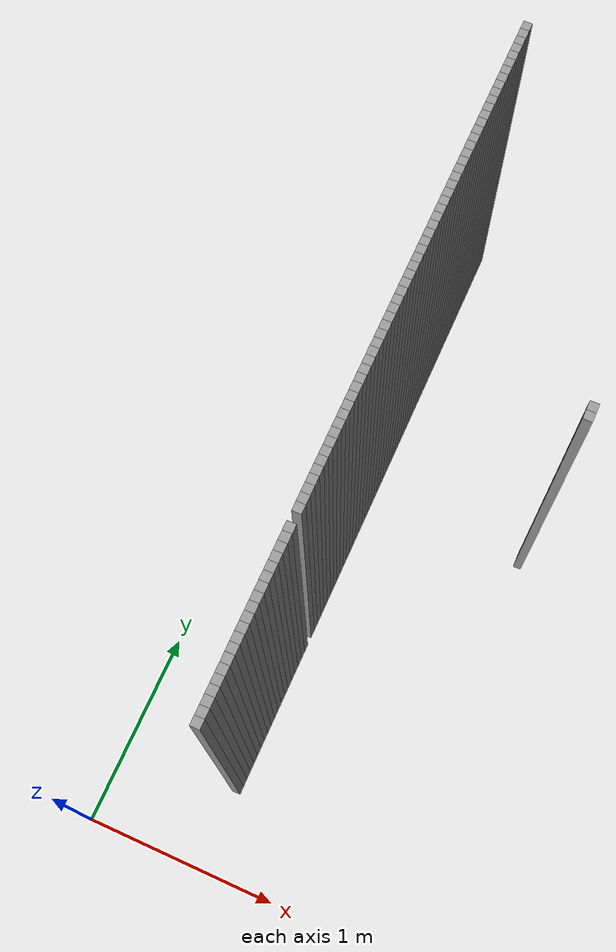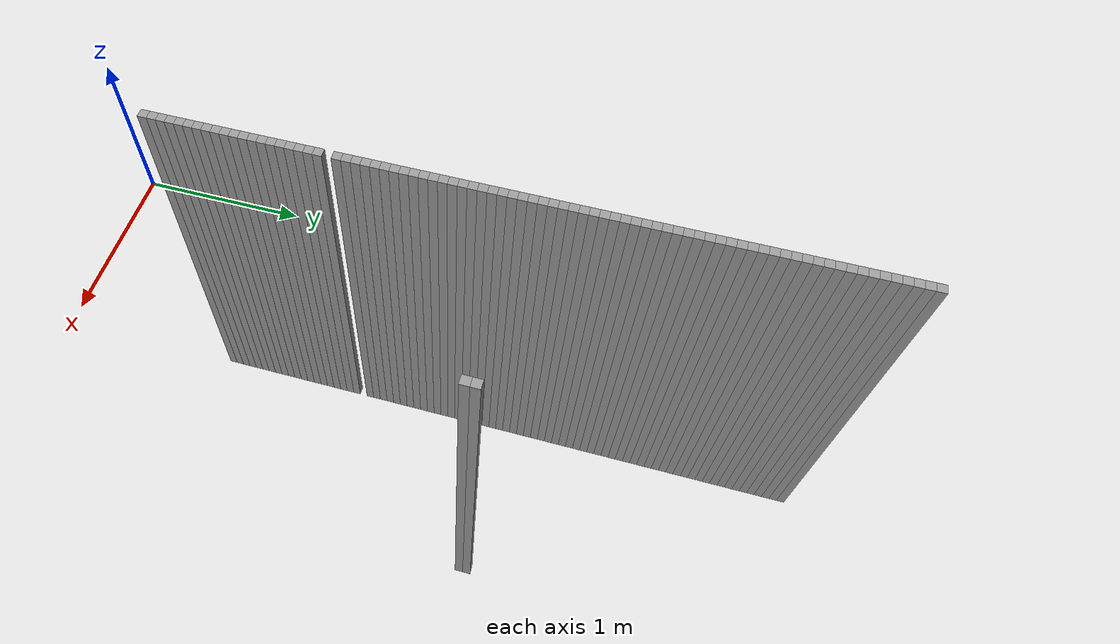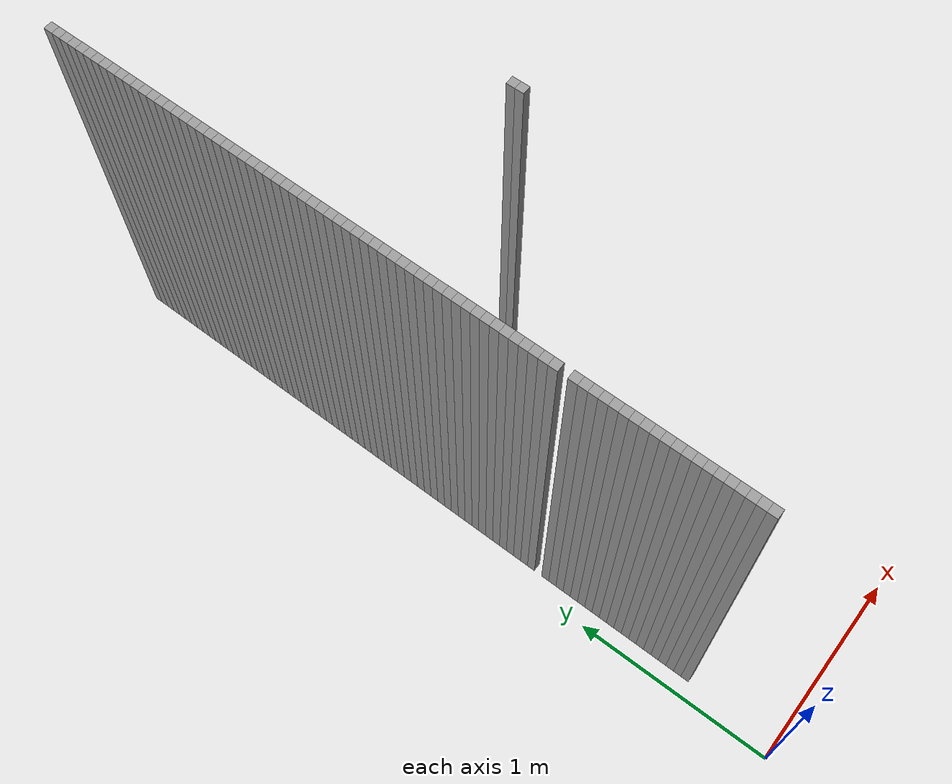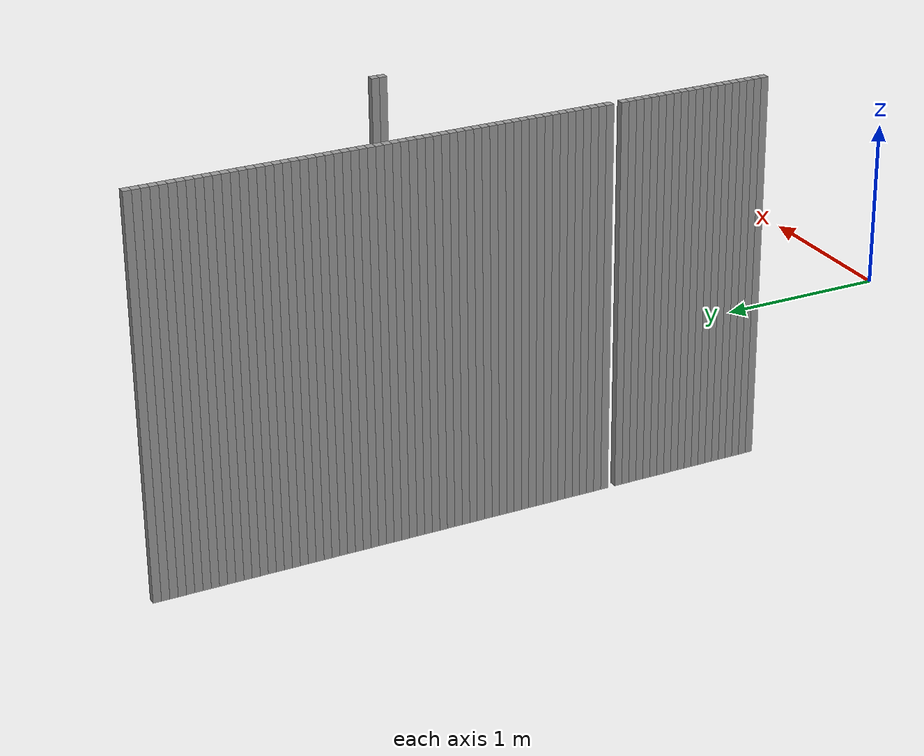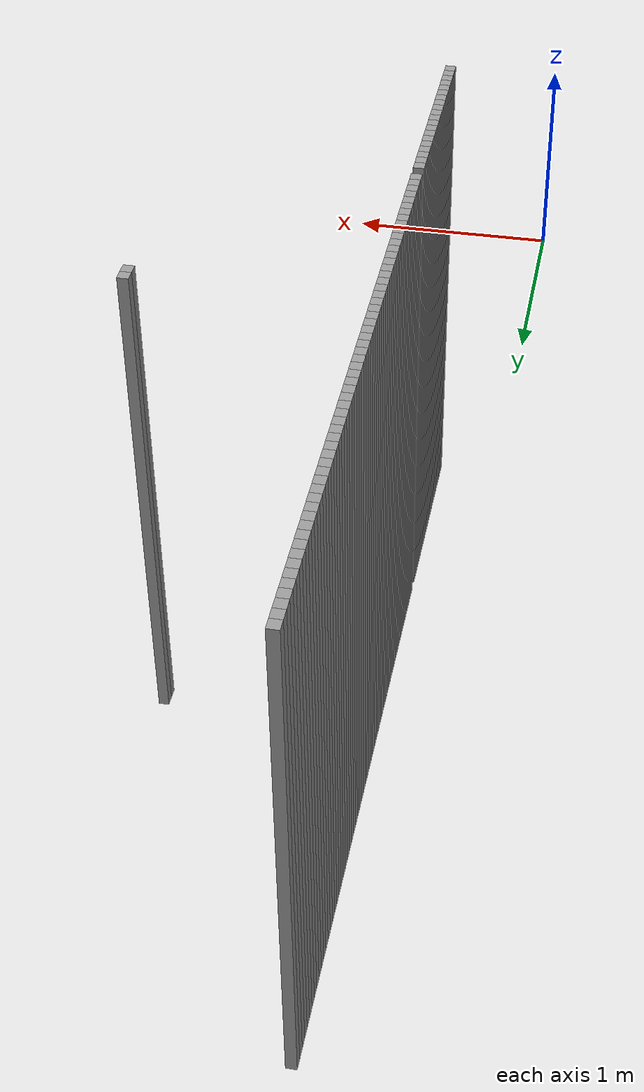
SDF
<sdf version="1.6">
 <model name="turtlebot3_rooms">
  <link name="Wall_1">
   <collision name="Wall_1_Collision"><geometry><box><size>0.05 0.05 2.5</size></box></geometry></collision>
   <visual name="Wall_1_Visual">
    <geometry><box><size>0.05 0.05 2.5</size></box></geometry>
    <material>
     <script><uri>file://media/materials/scripts/gazebo.material</uri><name>Gazebo/Grey</name></script>
     <ambient>1 1 1 1</ambient>
    </material>
   </visual>
   <pose>0.475 0.525 0 0 0 0</pose>
  </link>
  <link name="Wall_3">
   <collision name="Wall_3_Collision"><geometry><box><size>0.05 0.05 2.5</size></box></geometry></collision>
   <visual name="Wall_3_Visual">
    <geometry><box><size>0.05 0.05 2.5</size></box></geometry>
    <material>
     <script><uri>file://media/materials/scripts/gazebo.material</uri><name>Gazebo/Grey</name></script>
     <ambient>1 1 1 1</ambient>
    </material>
   </visual>
   <pose>0.475 0.575 0 0 0 0</pose>
  </link>
  <link name="Wall_5">
   <collision name="Wall_5_Collision"><geometry><box><size>0.05 0.05 2.5</size></box></geometry></collision>
   <visual name="Wall_5_Visual">
    <geometry><box><size>0.05 0.05 2.5</size></box></geometry>
    <material>
     <script><uri>file://media/materials/scripts/gazebo.material</uri><name>Gazebo/Grey</name></script>
     <ambient>1 1 1 1</ambient>
    </material>
   </visual>
   <pose>0.475 0.625 0 0 0 0</pose>
  </link>
  <link name="Wall_7">
   <collision name="Wall_7_Collision"><geometry><box><size>0.05 0.05 2.5</size></box></geometry></collision>
   <visual name="Wall_7_Visual">
    <geometry><box><size>0.05 0.05 2.5</size></box></geometry>
    <material>
     <script><uri>file://media/materials/scripts/gazebo.material</uri><name>Gazebo/Grey</name></script>
     <ambient>1 1 1 1</ambient>
    </material>
   </visual>
   <pose>0.475 0.675 0 0 0 0</pose>
  </link>
  <link name="Wall_9">
   <collision name="Wall_9_Collision"><geometry><box><size>0.05 0.05 2.5</size></box></geometry></collision>
   <visual name="Wall_9_Visual">
    <geometry><box><size>0.05 0.05 2.5</size></box></geometry>
    <material>
     <script><uri>file://media/materials/scripts/gazebo.material</uri><name>Gazebo/Grey</name></script>
     <ambient>1 1 1 1</ambient>
    </material>
   </visual>
   <pose>0.475 0.725 0 0 0 0</pose>
  </link>
  <link name="Wall_11">
   <collision name="Wall_11_Collision"><geometry><box><size>0.05 0.05 2.5</size></box></geometry></collision>
   <visual name="Wall_11_Visual">
    <geometry><box><size>0.05 0.05 2.5</size></box></geometry>
    <material>
     <script><uri>file://media/materials/scripts/gazebo.material</uri><name>Gazebo/Grey</name></script>
     <ambient>1 1 1 1</ambient>
    </material>
   </visual>
   <pose>0.475 0.775 0 0 0 0</pose>
  </link>
  <link name="Wall_13">
   <collision name="Wall_13_Collision"><geometry><box><size>0.05 0.05 2.5</size></box></geometry></collision>
   <visual name="Wall_13_Visual">
    <geometry><box><size>0.05 0.05 2.5</size></box></geometry>
    <material>
     <script><uri>file://media/materials/scripts/gazebo.material</uri><name>Gazebo/Grey</name></script>
     <ambient>1 1 1 1</ambient>
    </material>
   </visual>
   <pose>0.475 0.825 0 0 0 0</pose>
  </link>
  <link name="Wall_15">
   <collision name="Wall_15_Collision"><geometry><box><size>0.05 0.05 2.5</size></box></geometry></collision>
   <visual name="Wall_15_Visual">
    <geometry><box><size>0.05 0.05 2.5</size></box></geometry>
    <material>
     <script><uri>file://media/materials/scripts/gazebo.material</uri><name>Gazebo/Grey</name></script>
     <ambient>1 1 1 1</ambient>
    </material>
   </visual>
   <pose>0.475 0.875 0 0 0 0</pose>
  </link>
  <link name="Wall_17">
   <collision name="Wall_17_Collision"><geometry><box><size>0.05 0.05 2.5</size></box></geometry></collision>
   <visual name="Wall_17_Visual">
    <geometry><box><size>0.05 0.05 2.5</size></box></geometry>
    <material>
     <script><uri>file://media/materials/scripts/gazebo.material</uri><name>Gazebo/Grey</name></script>
     <ambient>1 1 1 1</ambient>
    </material>
   </visual>
   <pose>0.475 0.925 0 0 0 0</pose>
  </link>
  <link name="Wall_19">
   <collision name="Wall_19_Collision"><geometry><box><size>0.05 0.05 2.5</size></box></geometry></collision>
   <visual name="Wall_19_Visual">
    <geometry><box><size>0.05 0.05 2.5</size></box></geometry>
    <material>
     <script><uri>file://media/materials/scripts/gazebo.material</uri><name>Gazebo/Grey</name></script>
     <ambient>1 1 1 1</ambient>
    </material>
   </visual>
   <pose>0.475 0.975 0 0 0 0</pose>
  </link>
  <link name="Wall_21">
   <collision name="Wall_21_Collision"><geometry><box><size>0.05 0.05 2.5</size></box></geometry></collision>
   <visual name="Wall_21_Visual">
    <geometry><box><size>0.05 0.05 2.5</size></box></geometry>
    <material>
     <script><uri>file://media/materials/scripts/gazebo.material</uri><name>Gazebo/Grey</name></script>
     <ambient>1 1 1 1</ambient>
    </material>
   </visual>
   <pose>0.475 1.025 0 0 0 0</pose>
  </link>
  <link name="Wall_23">
   <collision name="Wall_23_Collision"><geometry><box><size>0.05 0.05 2.5</size></box></geometry></collision>
   <visual name="Wall_23_Visual">
    <geometry><box><size>0.05 0.05 2.5</size></box></geometry>
    <material>
     <script><uri>file://media/materials/scripts/gazebo.material</uri><name>Gazebo/Grey</name></script>
     <ambient>1 1 1 1</ambient>
    </material>
   </visual>
   <pose>0.475 1.075 0 0 0 0</pose>
  </link>
  <link name="Wall_25">
   <collision name="Wall_25_Collision"><geometry><box><size>0.05 0.05 2.5</size></box></geometry></collision>
   <visual name="Wall_25_Visual">
    <geometry><box><size>0.05 0.05 2.5</size></box></geometry>
    <material>
     <script><uri>file://media/materials/scripts/gazebo.material</uri><name>Gazebo/Grey</name></script>
     <ambient>1 1 1 1</ambient>
    </material>
   </visual>
   <pose>0.475 1.125 0 0 0 0</pose>
  </link>
  <link name="Wall_27">
   <collision name="Wall_27_Collision"><geometry><box><size>0.05 0.05 2.5</size></box></geometry></collision>
   <visual name="Wall_27_Visual">
    <geometry><box><size>0.05 0.05 2.5</size></box></geometry>
    <material>
     <script><uri>file://media/materials/scripts/gazebo.material</uri><name>Gazebo/Grey</name></script>
     <ambient>1 1 1 1</ambient>
    </material>
   </visual>
   <pose>0.475 1.175 0 0 0 0</pose>
  </link>
  <link name="Wall_29">
   <collision name="Wall_29_Collision"><geometry><box><size>0.05 0.05 2.5</size></box></geometry></collision>
   <visual name="Wall_29_Visual">
    <geometry><box><size>0.05 0.05 2.5</size></box></geometry>
    <material>
     <script><uri>file://media/materials/scripts/gazebo.material</uri><name>Gazebo/Grey</name></script>
     <ambient>1 1 1 1</ambient>
    </material>
   </visual>
   <pose>0.475 1.225 0 0 0 0</pose>
  </link>
  <link name="Wall_31">
   <collision name="Wall_31_Collision"><geometry><box><size>0.05 0.05 2.5</size></box></geometry></collision>
   <visual name="Wall_31_Visual">
    <geometry><box><size>0.05 0.05 2.5</size></box></geometry>
    <material>
     <script><uri>file://media/materials/scripts/gazebo.material</uri><name>Gazebo/Grey</name></script>
     <ambient>1 1 1 1</ambient>
    </material>
   </visual>
   <pose>0.475 1.275 0 0 0 0</pose>
  </link>
  <link name="Wall_33">
   <collision name="Wall_33_Collision"><geometry><box><size>0.05 0.05 2.5</size></box></geometry></collision>
   <visual name="Wall_33_Visual">
    <geometry><box><size>0.05 0.05 2.5</size></box></geometry>
    <material>
     <script><uri>file://media/materials/scripts/gazebo.material</uri><name>Gazebo/Grey</name></script>
     <ambient>1 1 1 1</ambient>
    </material>
   </visual>
   <pose>0.475 1.325 0 0 0 0</pose>
  </link>
  <link name="Wall_35">
   <collision name="Wall_35_Collision"><geometry><box><size>0.05 0.05 2.5</size></box></geometry></collision>
   <visual name="Wall_35_Visual">
    <geometry><box><size>0.05 0.05 2.5</size></box></geometry>
    <material>
     <script><uri>file://media/materials/scripts/gazebo.material</uri><name>Gazebo/Grey</name></script>
     <ambient>1 1 1 1</ambient>
    </material>
   </visual>
   <pose>0.475 1.375 0 0 0 0</pose>
  </link>
  <link name="Wall_37">
   <collision name="Wall_37_Collision"><geometry><box><size>0.05 0.05 2.5</size></box></geometry></collision>
   <visual name="Wall_37_Visual">
    <geometry><box><size>0.05 0.05 2.5</size></box></geometry>
    <material>
     <script><uri>file://media/materials/scripts/gazebo.material</uri><name>Gazebo/Grey</name></script>
     <ambient>1 1 1 1</ambient>
    </material>
   </visual>
   <pose>0.475 1.425 0 0 0 0</pose>
  </link>
  <link name="Wall_39">
   <collision name="Wall_39_Collision"><geometry><box><size>0.05 0.05 2.5</size></box></geometry></collision>
   <visual name="Wall_39_Visual">
    <geometry><box><size>0.05 0.05 2.5</size></box></geometry>
    <material>
     <script><uri>file://media/materials/scripts/gazebo.material</uri><name>Gazebo/Grey</name></script>
     <ambient>1 1 1 1</ambient>
    </material>
   </visual>
   <pose>0.475 1.475 0 0 0 0</pose>
  </link>
  <link name="Wall_43">
   <collision name="Wall_43_Collision"><geometry><box><size>0.05 0.05 2.5</size></box></geometry></collision>
   <visual name="Wall_43_Visual">
    <geometry><box><size>0.05 0.05 2.5</size></box></geometry>
    <material>
     <script><uri>file://media/materials/scripts/gazebo.material</uri><name>Gazebo/Grey</name></script>
     <ambient>1 1 1 1</ambient>
    </material>
   </visual>
   <pose>0.475 1.575 0 0 0 0</pose>
  </link>
  <link name="Wall_46">
   <collision name="Wall_46_Collision"><geometry><box><size>0.05 0.05 2.5</size></box></geometry></collision>
   <visual name="Wall_46_Visual">
    <geometry><box><size>0.05 0.05 2.5</size></box></geometry>
    <material>
     <script><uri>file://media/materials/scripts/gazebo.material</uri><name>Gazebo/Grey</name></script>
     <ambient>1 1 1 1</ambient>
    </material>
   </visual>
   <pose>0.475 1.625 0 0 0 0</pose>
  </link>
  <link name="Wall_49">
   <collision name="Wall_49_Collision"><geometry><box><size>0.05 0.05 2.5</size></box></geometry></collision>
   <visual name="Wall_49_Visual">
    <geometry><box><size>0.05 0.05 2.5</size></box></geometry>
    <material>
     <script><uri>file://media/materials/scripts/gazebo.material</uri><name>Gazebo/Grey</name></script>
     <ambient>1 1 1 1</ambient>
    </material>
   </visual>
   <pose>0.475 1.675 0 0 0 0</pose>
  </link>
  <link name="Wall_52">
   <collision name="Wall_52_Collision"><geometry><box><size>0.05 0.05 2.5</size></box></geometry></collision>
   <visual name="Wall_52_Visual">
    <geometry><box><size>0.05 0.05 2.5</size></box></geometry>
    <material>
     <script><uri>file://media/materials/scripts/gazebo.material</uri><name>Gazebo/Grey</name></script>
     <ambient>1 1 1 1</ambient>
    </material>
   </visual>
   <pose>0.475 1.725 0 0 0 0</pose>
  </link>
  <link name="Wall_55">
   <collision name="Wall_55_Collision"><geometry><box><size>0.05 0.05 2.5</size></box></geometry></collision>
   <visual name="Wall_55_Visual">
    <geometry><box><size>0.05 0.05 2.5</size></box></geometry>
    <material>
     <script><uri>file://media/materials/scripts/gazebo.material</uri><name>Gazebo/Grey</name></script>
     <ambient>1 1 1 1</ambient>
    </material>
   </visual>
   <pose>0.475 1.775 0 0 0 0</pose>
  </link>
  <link name="Wall_58">
   <collision name="Wall_58_Collision"><geometry><box><size>0.05 0.05 2.5</size></box></geometry></collision>
   <visual name="Wall_58_Visual">
    <geometry><box><size>0.05 0.05 2.5</size></box></geometry>
    <material>
     <script><uri>file://media/materials/scripts/gazebo.material</uri><name>Gazebo/Grey</name></script>
     <ambient>1 1 1 1</ambient>
    </material>
   </visual>
   <pose>0.475 1.825 0 0 0 0</pose>
  </link>
  <link name="Wall_61">
   <collision name="Wall_61_Collision"><geometry><box><size>0.05 0.05 2.5</size></box></geometry></collision>
   <visual name="Wall_61_Visual">
    <geometry><box><size>0.05 0.05 2.5</size></box></geometry>
    <material>
     <script><uri>file://media/materials/scripts/gazebo.material</uri><name>Gazebo/Grey</name></script>
     <ambient>1 1 1 1</ambient>
    </material>
   </visual>
   <pose>0.475 1.875 0 0 0 0</pose>
  </link>
  <link name="Wall_64">
   <collision name="Wall_64_Collision"><geometry><box><size>0.05 0.05 2.5</size></box></geometry></collision>
   <visual name="Wall_64_Visual">
    <geometry><box><size>0.05 0.05 2.5</size></box></geometry>
    <material>
     <script><uri>file://media/materials/scripts/gazebo.material</uri><name>Gazebo/Grey</name></script>
     <ambient>1 1 1 1</ambient>
    </material>
   </visual>
   <pose>0.475 1.925 0 0 0 0</pose>
  </link>
  <link name="Wall_67">
   <collision name="Wall_67_Collision"><geometry><box><size>0.05 0.05 2.5</size></box></geometry></collision>
   <visual name="Wall_67_Visual">
    <geometry><box><size>0.05 0.05 2.5</size></box></geometry>
    <material>
     <script><uri>file://media/materials/scripts/gazebo.material</uri><name>Gazebo/Grey</name></script>
     <ambient>1 1 1 1</ambient>
    </material>
   </visual>
   <pose>0.475 1.975 0 0 0 0</pose>
  </link>
  <link name="Wall_70">
   <collision name="Wall_70_Collision"><geometry><box><size>0.05 0.05 2.5</size></box></geometry></collision>
   <visual name="Wall_70_Visual">
    <geometry><box><size>0.05 0.05 2.5</size></box></geometry>
    <material>
     <script><uri>file://media/materials/scripts/gazebo.material</uri><name>Gazebo/Grey</name></script>
     <ambient>1 1 1 1</ambient>
    </material>
   </visual>
   <pose>0.475 2.025 0 0 0 0</pose>
  </link>
  <link name="Wall_73">
   <collision name="Wall_73_Collision"><geometry><box><size>0.05 0.05 2.5</size></box></geometry></collision>
   <visual name="Wall_73_Visual">
    <geometry><box><size>0.05 0.05 2.5</size></box></geometry>
    <material>
     <script><uri>file://media/materials/scripts/gazebo.material</uri><name>Gazebo/Grey</name></script>
     <ambient>1 1 1 1</ambient>
    </material>
   </visual>
   <pose>0.475 2.075 0 0 0 0</pose>
  </link>
  <link name="Wall_76">
   <collision name="Wall_76_Collision"><geometry><box><size>0.05 0.05 2.5</size></box></geometry></collision>
   <visual name="Wall_76_Visual">
    <geometry><box><size>0.05 0.05 2.5</size></box></geometry>
    <material>
     <script><uri>file://media/materials/scripts/gazebo.material</uri><name>Gazebo/Grey</name></script>
     <ambient>1 1 1 1</ambient>
    </material>
   </visual>
   <pose>0.475 2.125 0 0 0 0</pose>
  </link>
  <link name="Wall_79">
   <collision name="Wall_79_Collision"><geometry><box><size>0.05 0.05 2.5</size></box></geometry></collision>
   <visual name="Wall_79_Visual">
    <geometry><box><size>0.05 0.05 2.5</size></box></geometry>
    <material>
     <script><uri>file://media/materials/scripts/gazebo.material</uri><name>Gazebo/Grey</name></script>
     <ambient>1 1 1 1</ambient>
    </material>
   </visual>
   <pose>0.475 2.175 0 0 0 0</pose>
  </link>
  <link name="Wall_82">
   <collision name="Wall_82_Collision"><geometry><box><size>0.05 0.05 2.5</size></box></geometry></collision>
   <visual name="Wall_82_Visual">
    <geometry><box><size>0.05 0.05 2.5</size></box></geometry>
    <material>
     <script><uri>file://media/materials/scripts/gazebo.material</uri><name>Gazebo/Grey</name></script>
     <ambient>1 1 1 1</ambient>
    </material>
   </visual>
   <pose>0.475 2.225 0 0 0 0</pose>
  </link>
  <link name="Wall_85">
   <collision name="Wall_85_Collision"><geometry><box><size>0.05 0.05 2.5</size></box></geometry></collision>
   <visual name="Wall_85_Visual">
    <geometry><box><size>0.05 0.05 2.5</size></box></geometry>
    <material>
     <script><uri>file://media/materials/scripts/gazebo.material</uri><name>Gazebo/Grey</name></script>
     <ambient>1 1 1 1</ambient>
    </material>
   </visual>
   <pose>0.475 2.275 0 0 0 0</pose>
  </link>
  <link name="Wall_88">
   <collision name="Wall_88_Collision"><geometry><box><size>0.05 0.05 2.5</size></box></geometry></collision>
   <visual name="Wall_88_Visual">
    <geometry><box><size>0.05 0.05 2.5</size></box></geometry>
    <material>
     <script><uri>file://media/materials/scripts/gazebo.material</uri><name>Gazebo/Grey</name></script>
     <ambient>1 1 1 1</ambient>
    </material>
   </visual>
   <pose>0.475 2.325 0 0 0 0</pose>
  </link>
  <link name="Wall_91">
   <collision name="Wall_91_Collision"><geometry><box><size>0.05 0.05 2.5</size></box></geometry></collision>
   <visual name="Wall_91_Visual">
    <geometry><box><size>0.05 0.05 2.5</size></box></geometry>
    <material>
     <script><uri>file://media/materials/scripts/gazebo.material</uri><name>Gazebo/Grey</name></script>
     <ambient>1 1 1 1</ambient>
    </material>
   </visual>
   <pose>0.475 2.375 0 0 0 0</pose>
  </link>
  <link name="Wall_94">
   <collision name="Wall_94_Collision"><geometry><box><size>0.05 0.05 2.5</size></box></geometry></collision>
   <visual name="Wall_94_Visual">
    <geometry><box><size>0.05 0.05 2.5</size></box></geometry>
    <material>
     <script><uri>file://media/materials/scripts/gazebo.material</uri><name>Gazebo/Grey</name></script>
     <ambient>1 1 1 1</ambient>
    </material>
   </visual>
   <pose>0.475 2.425 0 0 0 0</pose>
  </link>
  <link name="Wall_97">
   <collision name="Wall_97_Collision"><geometry><box><size>0.05 0.05 2.5</size></box></geometry></collision>
   <visual name="Wall_97_Visual">
    <geometry><box><size>0.05 0.05 2.5</size></box></geometry>
    <material>
     <script><uri>file://media/materials/scripts/gazebo.material</uri><name>Gazebo/Grey</name></script>
     <ambient>1 1 1 1</ambient>
    </material>
   </visual>
   <pose>0.475 2.475 0 0 0 0</pose>
  </link>
  <link name="Wall_101">
   <collision name="Wall_101_Collision"><geometry><box><size>0.05 0.05 2.5</size></box></geometry></collision>
   <visual name="Wall_101_Visual">
    <geometry><box><size>0.05 0.05 2.5</size></box></geometry>
    <material>
     <script><uri>file://media/materials/scripts/gazebo.material</uri><name>Gazebo/Grey</name></script>
     <ambient>1 1 1 1</ambient>
    </material>
   </visual>
   <pose>0.475 2.525 0 0 0 0</pose>
  </link>
  <link name="Wall_102">
   <collision name="Wall_102_Collision"><geometry><box><size>0.05 0.05 2.5</size></box></geometry></collision>
   <visual name="Wall_102_Visual">
    <geometry><box><size>0.05 0.05 2.5</size></box></geometry>
    <material>
     <script><uri>file://media/materials/scripts/gazebo.material</uri><name>Gazebo/Grey</name></script>
     <ambient>1 1 1 1</ambient>
    </material>
   </visual>
   <pose>1.525 2.525 0 0 0 0</pose>
  </link>
  <link name="Wall_106">
   <collision name="Wall_106_Collision"><geometry><box><size>0.05 0.05 2.5</size></box></geometry></collision>
   <visual name="Wall_106_Visual">
    <geometry><box><size>0.05 0.05 2.5</size></box></geometry>
    <material>
     <script><uri>file://media/materials/scripts/gazebo.material</uri><name>Gazebo/Grey</name></script>
     <ambient>1 1 1 1</ambient>
    </material>
   </visual>
   <pose>0.475 2.575 0 0 0 0</pose>
  </link>
  <link name="Wall_107">
   <collision name="Wall_107_Collision"><geometry><box><size>0.05 0.05 2.5</size></box></geometry></collision>
   <visual name="Wall_107_Visual">
    <geometry><box><size>0.05 0.05 2.5</size></box></geometry>
    <material>
     <script><uri>file://media/materials/scripts/gazebo.material</uri><name>Gazebo/Grey</name></script>
     <ambient>1 1 1 1</ambient>
    </material>
   </visual>
   <pose>1.525 2.575 0 0 0 0</pose>
  </link>
  <link name="Wall_111">
   <collision name="Wall_111_Collision"><geometry><box><size>0.05 0.05 2.5</size></box></geometry></collision>
   <visual name="Wall_111_Visual">
    <geometry><box><size>0.05 0.05 2.5</size></box></geometry>
    <material>
     <script><uri>file://media/materials/scripts/gazebo.material</uri><name>Gazebo/Grey</name></script>
     <ambient>1 1 1 1</ambient>
    </material>
   </visual>
   <pose>0.475 2.625 0 0 0 0</pose>
  </link>
  <link name="Wall_116">
   <collision name="Wall_116_Collision"><geometry><box><size>0.05 0.05 2.5</size></box></geometry></collision>
   <visual name="Wall_116_Visual">
    <geometry><box><size>0.05 0.05 2.5</size></box></geometry>
    <material>
     <script><uri>file://media/materials/scripts/gazebo.material</uri><name>Gazebo/Grey</name></script>
     <ambient>1 1 1 1</ambient>
    </material>
   </visual>
   <pose>0.475 2.675 0 0 0 0</pose>
  </link>
  <link name="Wall_121">
   <collision name="Wall_121_Collision"><geometry><box><size>0.05 0.05 2.5</size></box></geometry></collision>
   <visual name="Wall_121_Visual">
    <geometry><box><size>0.05 0.05 2.5</size></box></geometry>
    <material>
     <script><uri>file://media/materials/scripts/gazebo.material</uri><name>Gazebo/Grey</name></script>
     <ambient>1 1 1 1</ambient>
    </material>
   </visual>
   <pose>0.475 2.725 0 0 0 0</pose>
  </link>
  <link name="Wall_126">
   <collision name="Wall_126_Collision"><geometry><box><size>0.05 0.05 2.5</size></box></geometry></collision>
   <visual name="Wall_126_Visual">
    <geometry><box><size>0.05 0.05 2.5</size></box></geometry>
    <material>
     <script><uri>file://media/materials/scripts/gazebo.material</uri><name>Gazebo/Grey</name></script>
     <ambient>1 1 1 1</ambient>
    </material>
   </visual>
   <pose>0.475 2.775 0 0 0 0</pose>
  </link>
  <link name="Wall_131">
   <collision name="Wall_131_Collision"><geometry><box><size>0.05 0.05 2.5</size></box></geometry></collision>
   <visual name="Wall_131_Visual">
    <geometry><box><size>0.05 0.05 2.5</size></box></geometry>
    <material>
     <script><uri>file://media/materials/scripts/gazebo.material</uri><name>Gazebo/Grey</name></script>
     <ambient>1 1 1 1</ambient>
    </material>
   </visual>
   <pose>0.475 2.825 0 0 0 0</pose>
  </link>
  <link name="Wall_136">
   <collision name="Wall_136_Collision"><geometry><box><size>0.05 0.05 2.5</size></box></geometry></collision>
   <visual name="Wall_136_Visual">
    <geometry><box><size>0.05 0.05 2.5</size></box></geometry>
    <material>
     <script><uri>file://media/materials/scripts/gazebo.material</uri><name>Gazebo/Grey</name></script>
     <ambient>1 1 1 1</ambient>
    </material>
   </visual>
   <pose>0.475 2.875 0 0 0 0</pose>
  </link>
  <link name="Wall_141">
   <collision name="Wall_141_Collision"><geometry><box><size>0.05 0.05 2.5</size></box></geometry></collision>
   <visual name="Wall_141_Visual">
    <geometry><box><size>0.05 0.05 2.5</size></box></geometry>
    <material>
     <script><uri>file://media/materials/scripts/gazebo.material</uri><name>Gazebo/Grey</name></script>
     <ambient>1 1 1 1</ambient>
    </material>
   </visual>
   <pose>0.475 2.925 0 0 0 0</pose>
  </link>
  <link name="Wall_146">
   <collision name="Wall_146_Collision"><geometry><box><size>0.05 0.05 2.5</size></box></geometry></collision>
   <visual name="Wall_146_Visual">
    <geometry><box><size>0.05 0.05 2.5</size></box></geometry>
    <material>
     <script><uri>file://media/materials/scripts/gazebo.material</uri><name>Gazebo/Grey</name></script>
     <ambient>1 1 1 1</ambient>
    </material>
   </visual>
   <pose>0.475 2.975 0 0 0 0</pose>
  </link>
  <link name="Wall_151">
   <collision name="Wall_151_Collision"><geometry><box><size>0.05 0.05 2.5</size></box></geometry></collision>
   <visual name="Wall_151_Visual">
    <geometry><box><size>0.05 0.05 2.5</size></box></geometry>
    <material>
     <script><uri>file://media/materials/scripts/gazebo.material</uri><name>Gazebo/Grey</name></script>
     <ambient>1 1 1 1</ambient>
    </material>
   </visual>
   <pose>0.475 3.025 0 0 0 0</pose>
  </link>
  <link name="Wall_156">
   <collision name="Wall_156_Collision"><geometry><box><size>0.05 0.05 2.5</size></box></geometry></collision>
   <visual name="Wall_156_Visual">
    <geometry><box><size>0.05 0.05 2.5</size></box></geometry>
    <material>
     <script><uri>file://media/materials/scripts/gazebo.material</uri><name>Gazebo/Grey</name></script>
     <ambient>1 1 1 1</ambient>
    </material>
   </visual>
   <pose>0.475 3.075 0 0 0 0</pose>
  </link>
  <link name="Wall_161">
   <collision name="Wall_161_Collision"><geometry><box><size>0.05 0.05 2.5</size></box></geometry></collision>
   <visual name="Wall_161_Visual">
    <geometry><box><size>0.05 0.05 2.5</size></box></geometry>
    <material>
     <script><uri>file://media/materials/scripts/gazebo.material</uri><name>Gazebo/Grey</name></script>
     <ambient>1 1 1 1</ambient>
    </material>
   </visual>
   <pose>0.475 3.125 0 0 0 0</pose>
  </link>
  <link name="Wall_166">
   <collision name="Wall_166_Collision"><geometry><box><size>0.05 0.05 2.5</size></box></geometry></collision>
   <visual name="Wall_166_Visual">
    <geometry><box><size>0.05 0.05 2.5</size></box></geometry>
    <material>
     <script><uri>file://media/materials/scripts/gazebo.material</uri><name>Gazebo/Grey</name></script>
     <ambient>1 1 1 1</ambient>
    </material>
   </visual>
   <pose>0.475 3.175 0 0 0 0</pose>
  </link>
  <link name="Wall_171">
   <collision name="Wall_171_Collision"><geometry><box><size>0.05 0.05 2.5</size></box></geometry></collision>
   <visual name="Wall_171_Visual">
    <geometry><box><size>0.05 0.05 2.5</size></box></geometry>
    <material>
     <script><uri>file://media/materials/scripts/gazebo.material</uri><name>Gazebo/Grey</name></script>
     <ambient>1 1 1 1</ambient>
    </material>
   </visual>
   <pose>0.475 3.225 0 0 0 0</pose>
  </link>
  <link name="Wall_176">
   <collision name="Wall_176_Collision"><geometry><box><size>0.05 0.05 2.5</size></box></geometry></collision>
   <visual name="Wall_176_Visual">
    <geometry><box><size>0.05 0.05 2.5</size></box></geometry>
    <material>
     <script><uri>file://media/materials/scripts/gazebo.material</uri><name>Gazebo/Grey</name></script>
     <ambient>1 1 1 1</ambient>
    </material>
   </visual>
   <pose>0.475 3.275 0 0 0 0</pose>
  </link>
  <link name="Wall_181">
   <collision name="Wall_181_Collision"><geometry><box><size>0.05 0.05 2.5</size></box></geometry></collision>
   <visual name="Wall_181_Visual">
    <geometry><box><size>0.05 0.05 2.5</size></box></geometry>
    <material>
     <script><uri>file://media/materials/scripts/gazebo.material</uri><name>Gazebo/Grey</name></script>
     <ambient>1 1 1 1</ambient>
    </material>
   </visual>
   <pose>0.475 3.325 0 0 0 0</pose>
  </link>
  <link name="Wall_186">
   <collision name="Wall_186_Collision"><geometry><box><size>0.05 0.05 2.5</size></box></geometry></collision>
   <visual name="Wall_186_Visual">
    <geometry><box><size>0.05 0.05 2.5</size></box></geometry>
    <material>
     <script><uri>file://media/materials/scripts/gazebo.material</uri><name>Gazebo/Grey</name></script>
     <ambient>1 1 1 1</ambient>
    </material>
   </visual>
   <pose>0.475 3.375 0 0 0 0</pose>
  </link>
  <link name="Wall_191">
   <collision name="Wall_191_Collision"><geometry><box><size>0.05 0.05 2.5</size></box></geometry></collision>
   <visual name="Wall_191_Visual">
    <geometry><box><size>0.05 0.05 2.5</size></box></geometry>
    <material>
     <script><uri>file://media/materials/scripts/gazebo.material</uri><name>Gazebo/Grey</name></script>
     <ambient>1 1 1 1</ambient>
    </material>
   </visual>
   <pose>0.475 3.425 0 0 0 0</pose>
  </link>
  <link name="Wall_196">
   <collision name="Wall_196_Collision"><geometry><box><size>0.05 0.05 2.5</size></box></geometry></collision>
   <visual name="Wall_196_Visual">
    <geometry><box><size>0.05 0.05 2.5</size></box></geometry>
    <material>
     <script><uri>file://media/materials/scripts/gazebo.material</uri><name>Gazebo/Grey</name></script>
     <ambient>1 1 1 1</ambient>
    </material>
   </visual>
   <pose>0.475 3.475 0 0 0 0</pose>
  </link>
  <link name="Wall_201">
   <collision name="Wall_201_Collision"><geometry><box><size>0.05 0.05 2.5</size></box></geometry></collision>
   <visual name="Wall_201_Visual">
    <geometry><box><size>0.05 0.05 2.5</size></box></geometry>
    <material>
     <script><uri>file://media/materials/scripts/gazebo.material</uri><name>Gazebo/Grey</name></script>
     <ambient>1 1 1 1</ambient>
    </material>
   </visual>
   <pose>0.475 3.525 0 0 0 0</pose>
  </link>
  <link name="Wall_205">
   <collision name="Wall_205_Collision"><geometry><box><size>0.05 0.05 2.5</size></box></geometry></collision>
   <visual name="Wall_205_Visual">
    <geometry><box><size>0.05 0.05 2.5</size></box></geometry>
    <material>
     <script><uri>file://media/materials/scripts/gazebo.material</uri><name>Gazebo/Grey</name></script>
     <ambient>1 1 1 1</ambient>
    </material>
   </visual>
   <pose>0.475 3.575 0 0 0 0</pose>
  </link>
  <link name="Wall_207">
   <collision name="Wall_207_Collision"><geometry><box><size>0.05 0.05 2.5</size></box></geometry></collision>
   <visual name="Wall_207_Visual">
    <geometry><box><size>0.05 0.05 2.5</size></box></geometry>
    <material>
     <script><uri>file://media/materials/scripts/gazebo.material</uri><name>Gazebo/Grey</name></script>
     <ambient>1 1 1 1</ambient>
    </material>
   </visual>
   <pose>0.475 3.625 0 0 0 0</pose>
  </link>
  <link name="Wall_209">
   <collision name="Wall_209_Collision"><geometry><box><size>0.05 0.05 2.5</size></box></geometry></collision>
   <visual name="Wall_209_Visual">
    <geometry><box><size>0.05 0.05 2.5</size></box></geometry>
    <material>
     <script><uri>file://media/materials/scripts/gazebo.material</uri><name>Gazebo/Grey</name></script>
     <ambient>1 1 1 1</ambient>
    </material>
   </visual>
   <pose>0.475 3.675 0 0 0 0</pose>
  </link>
  <link name="Wall_211">
   <collision name="Wall_211_Collision"><geometry><box><size>0.05 0.05 2.5</size></box></geometry></collision>
   <visual name="Wall_211_Visual">
    <geometry><box><size>0.05 0.05 2.5</size></box></geometry>
    <material>
     <script><uri>file://media/materials/scripts/gazebo.material</uri><name>Gazebo/Grey</name></script>
     <ambient>1 1 1 1</ambient>
    </material>
   </visual>
   <pose>0.475 3.725 0 0 0 0</pose>
  </link>
  <link name="Wall_213">
   <collision name="Wall_213_Collision"><geometry><box><size>0.05 0.05 2.5</size></box></geometry></collision>
   <visual name="Wall_213_Visual">
    <geometry><box><size>0.05 0.05 2.5</size></box></geometry>
    <material>
     <script><uri>file://media/materials/scripts/gazebo.material</uri><name>Gazebo/Grey</name></script>
     <ambient>1 1 1 1</ambient>
    </material>
   </visual>
   <pose>0.475 3.775 0 0 0 0</pose>
  </link>
  <link name="Wall_215">
   <collision name="Wall_215_Collision"><geometry><box><size>0.05 0.05 2.5</size></box></geometry></collision>
   <visual name="Wall_215_Visual">
    <geometry><box><size>0.05 0.05 2.5</size></box></geometry>
    <material>
     <script><uri>file://media/materials/scripts/gazebo.material</uri><name>Gazebo/Grey</name></script>
     <ambient>1 1 1 1</ambient>
    </material>
   </visual>
   <pose>0.475 3.825 0 0 0 0</pose>
  </link>
  <link name="Wall_217">
   <collision name="Wall_217_Collision"><geometry><box><size>0.05 0.05 2.5</size></box></geometry></collision>
   <visual name="Wall_217_Visual">
    <geometry><box><size>0.05 0.05 2.5</size></box></geometry>
    <material>
     <script><uri>file://media/materials/scripts/gazebo.material</uri><name>Gazebo/Grey</name></script>
     <ambient>1 1 1 1</ambient>
    </material>
   </visual>
   <pose>0.475 3.875 0 0 0 0</pose>
  </link>
  <link name="Wall_219">
   <collision name="Wall_219_Collision"><geometry><box><size>0.05 0.05 2.5</size></box></geometry></collision>
   <visual name="Wall_219_Visual">
    <geometry><box><size>0.05 0.05 2.5</size></box></geometry>
    <material>
     <script><uri>file://media/materials/scripts/gazebo.material</uri><name>Gazebo/Grey</name></script>
     <ambient>1 1 1 1</ambient>
    </material>
   </visual>
   <pose>0.475 3.925 0 0 0 0</pose>
  </link>
  <link name="Wall_221">
   <collision name="Wall_221_Collision"><geometry><box><size>0.05 0.05 2.5</size></box></geometry></collision>
   <visual name="Wall_221_Visual">
    <geometry><box><size>0.05 0.05 2.5</size></box></geometry>
    <material>
     <script><uri>file://media/materials/scripts/gazebo.material</uri><name>Gazebo/Grey</name></script>
     <ambient>1 1 1 1</ambient>
    </material>
   </visual>
   <pose>0.475 3.975 0 0 0 0</pose>
  </link>
  <link name="Wall_223">
   <collision name="Wall_223_Collision"><geometry><box><size>0.05 0.05 2.5</size></box></geometry></collision>
   <visual name="Wall_223_Visual">
    <geometry><box><size>0.05 0.05 2.5</size></box></geometry>
    <material>
     <script><uri>file://media/materials/scripts/gazebo.material</uri><name>Gazebo/Grey</name></script>
     <ambient>1 1 1 1</ambient>
    </material>
   </visual>
   <pose>0.475 4.025 0 0 0 0</pose>
  </link>
  <link name="Wall_225">
   <collision name="Wall_225_Collision"><geometry><box><size>0.05 0.05 2.5</size></box></geometry></collision>
   <visual name="Wall_225_Visual">
    <geometry><box><size>0.05 0.05 2.5</size></box></geometry>
    <material>
     <script><uri>file://media/materials/scripts/gazebo.material</uri><name>Gazebo/Grey</name></script>
     <ambient>1 1 1 1</ambient>
    </material>
   </visual>
   <pose>0.475 4.075 0 0 0 0</pose>
  </link>
  <link name="Wall_227">
   <collision name="Wall_227_Collision"><geometry><box><size>0.05 0.05 2.5</size></box></geometry></collision>
   <visual name="Wall_227_Visual">
    <geometry><box><size>0.05 0.05 2.5</size></box></geometry>
    <material>
     <script><uri>file://media/materials/scripts/gazebo.material</uri><name>Gazebo/Grey</name></script>
     <ambient>1 1 1 1</ambient>
    </material>
   </visual>
   <pose>0.475 4.125 0 0 0 0</pose>
  </link>
  <link name="Wall_229">
   <collision name="Wall_229_Collision"><geometry><box><size>0.05 0.05 2.5</size></box></geometry></collision>
   <visual name="Wall_229_Visual">
    <geometry><box><size>0.05 0.05 2.5</size></box></geometry>
    <material>
     <script><uri>file://media/materials/scripts/gazebo.material</uri><name>Gazebo/Grey</name></script>
     <ambient>1 1 1 1</ambient>
    </material>
   </visual>
   <pose>0.475 4.175 0 0 0 0</pose>
  </link>
  <link name="Wall_231">
   <collision name="Wall_231_Collision"><geometry><box><size>0.05 0.05 2.5</size></box></geometry></collision>
   <visual name="Wall_231_Visual">
    <geometry><box><size>0.05 0.05 2.5</size></box></geometry>
    <material>
     <script><uri>file://media/materials/scripts/gazebo.material</uri><name>Gazebo/Grey</name></script>
     <ambient>1 1 1 1</ambient>
    </material>
   </visual>
   <pose>0.475 4.225 0 0 0 0</pose>
  </link>
  <link name="Wall_233">
   <collision name="Wall_233_Collision"><geometry><box><size>0.05 0.05 2.5</size></box></geometry></collision>
   <visual name="Wall_233_Visual">
    <geometry><box><size>0.05 0.05 2.5</size></box></geometry>
    <material>
     <script><uri>file://media/materials/scripts/gazebo.material</uri><name>Gazebo/Grey</name></script>
     <ambient>1 1 1 1</ambient>
    </material>
   </visual>
   <pose>0.475 4.275 0 0 0 0</pose>
  </link>
  <link name="Wall_235">
   <collision name="Wall_235_Collision"><geometry><box><size>0.05 0.05 2.5</size></box></geometry></collision>
   <visual name="Wall_235_Visual">
    <geometry><box><size>0.05 0.05 2.5</size></box></geometry>
    <material>
     <script><uri>file://media/materials/scripts/gazebo.material</uri><name>Gazebo/Grey</name></script>
     <ambient>1 1 1 1</ambient>
    </material>
   </visual>
   <pose>0.475 4.325 0 0 0 0</pose>
  </link>
  <link name="Wall_237">
   <collision name="Wall_237_Collision"><geometry><box><size>0.05 0.05 2.5</size></box></geometry></collision>
   <visual name="Wall_237_Visual">
    <geometry><box><size>0.05 0.05 2.5</size></box></geometry>
    <material>
     <script><uri>file://media/materials/scripts/gazebo.material</uri><name>Gazebo/Grey</name></script>
     <ambient>1 1 1 1</ambient>
    </material>
   </visual>
   <pose>0.475 4.375 0 0 0 0</pose>
  </link>
  <link name="Wall_239">
   <collision name="Wall_239_Collision"><geometry><box><size>0.05 0.05 2.5</size></box></geometry></collision>
   <visual name="Wall_239_Visual">
    <geometry><box><size>0.05 0.05 2.5</size></box></geometry>
    <material>
     <script><uri>file://media/materials/scripts/gazebo.material</uri><name>Gazebo/Grey</name></script>
     <ambient>1 1 1 1</ambient>
    </material>
   </visual>
   <pose>0.475 4.425 0 0 0 0</pose>
  </link>
  <link name="Wall_241">
   <collision name="Wall_241_Collision"><geometry><box><size>0.05 0.05 2.5</size></box></geometry></collision>
   <visual name="Wall_241_Visual">
    <geometry><box><size>0.05 0.05 2.5</size></box></geometry>
    <material>
     <script><uri>file://media/materials/scripts/gazebo.material</uri><name>Gazebo/Grey</name></script>
     <ambient>1 1 1 1</ambient>
    </material>
   </visual>
   <pose>0.475 4.475 0 0 0 0</pose>
  </link>
  <static>1</static>
 </model>
</sdf>
